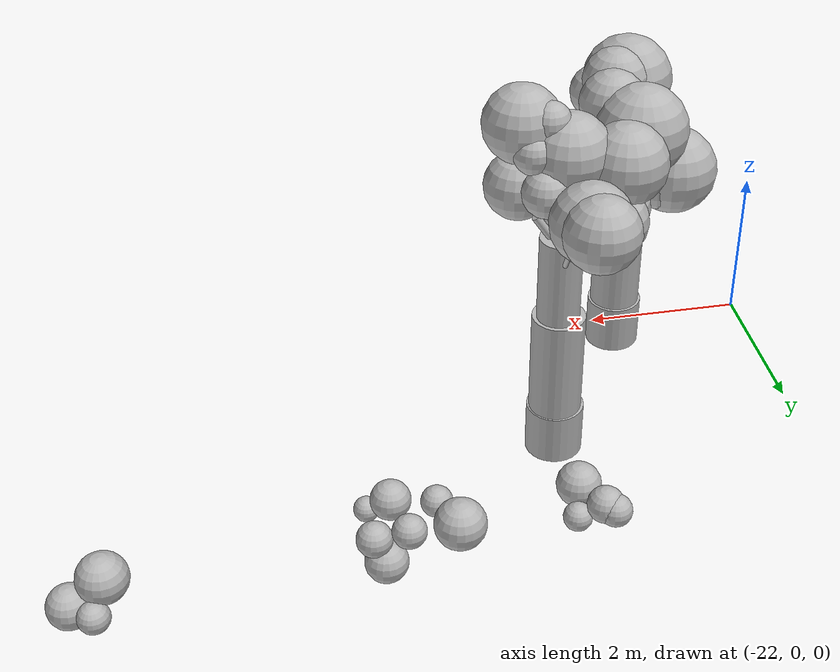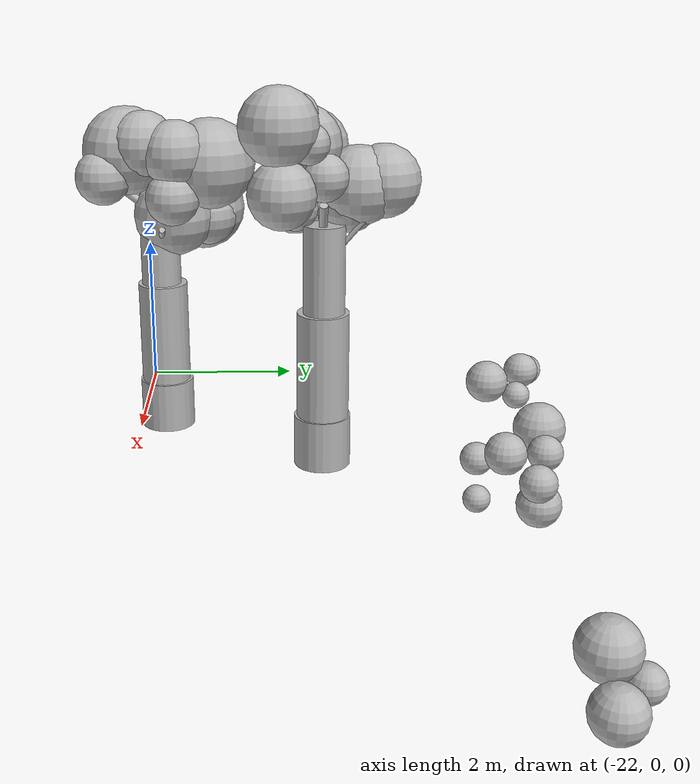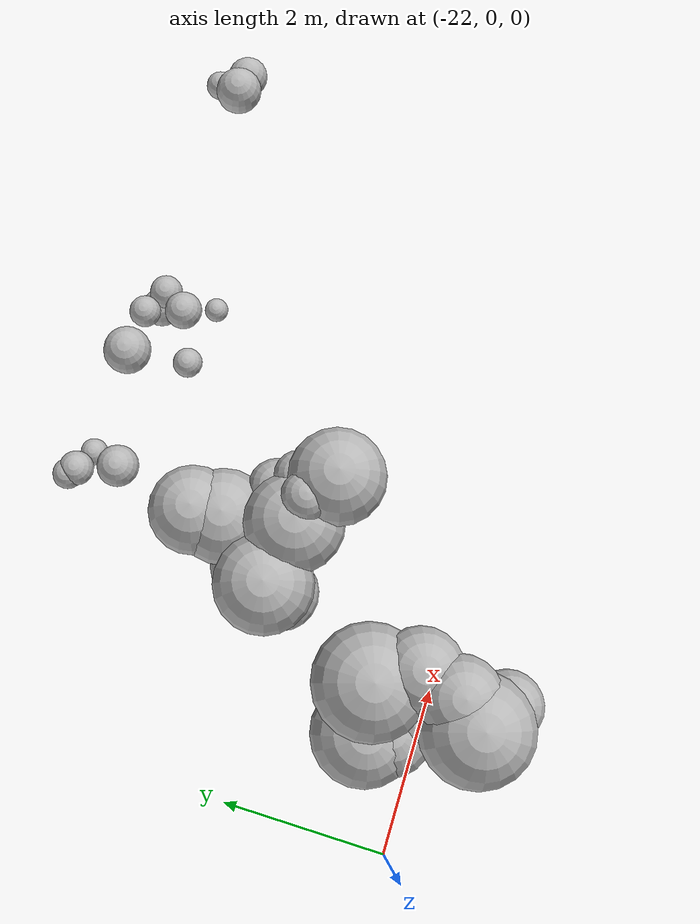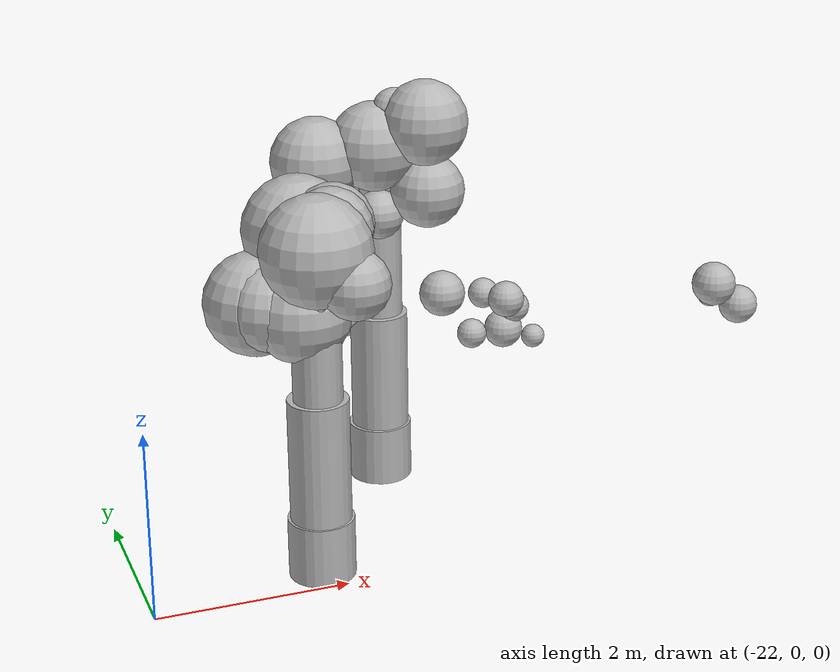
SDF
<sdf version="1.6">
 <world name="default">
  <model name="bush_17">
   <static>true</static>
   <pose>-20.1695 0.3543 0 0 0 0</pose>
   <link name="trunk">
    <pose>0 0 1.5000 0 0 0</pose>
    <collision name="trunk_c">
     <geometry><cylinder><radius>0.3500</radius><length>3.0000</length></cylinder></geometry>
    </collision>
   </link>
   <link name="trunk_v0">
    <pose>-0.0001 -0.0010 0.3100 0 0 0</pose>
    <visual name="trunk_v0_v">
     <geometry><cylinder><radius>0.3448</radius><length>0.6448</length></cylinder></geometry>
     <material>
      <script>
       <uri>model://bushfire/materials/scripts</uri>
       <uri>model://bushfire/materials/textures</uri>
       <name>Bushfire/CharBark</name>
      </script>
     </material>
    </visual>
   </link>
   <link name="trunk_v1">
    <pose>-0.0004 -0.0075 1.2700 0 0 0</pose>
    <visual name="trunk_v1_v">
     <geometry><cylinder><radius>0.3150</radius><length>1.3520</length></cylinder></geometry>
     <material>
      <script>
       <uri>model://bushfire/materials/scripts</uri>
       <uri>model://bushfire/materials/textures</uri>
       <name>Bushfire/BarkStringy</name>
      </script>
     </material>
    </visual>
   </link>
   <link name="trunk_v2">
    <pose>-0.0010 -0.0190 2.4600 0 0 0</pose>
    <visual name="trunk_v2_v">
     <geometry><cylinder><radius>0.2520</radius><length>1.1232</length></cylinder></geometry>
     <material>
      <script>
       <uri>model://bushfire/materials/scripts</uri>
       <uri>model://bushfire/materials/textures</uri>
       <name>Bushfire/BarkStringy</name>
      </script>
     </material>
    </visual>
   </link>
   <link name="branch0">
    <pose>0.2424 0.0303 2.5854 0 0.9604 0.1242</pose>
    <visual name="branch0_v">
     <geometry><cylinder><radius>0.0386</radius><length>0.5962</length></cylinder></geometry>
     <material>
      <script>
       <uri>model://bushfire/materials/scripts</uri>
       <uri>model://bushfire/materials/textures</uri>
       <name>Bushfire/BarkStringy</name>
      </script>
     </material>
    </visual>
   </link>
   <link name="branch1">
    <pose>-0.1376 0.1942 2.6648 0 0.9600 2.1872</pose>
    <visual name="branch1_v">
     <geometry><cylinder><radius>0.0537</radius><length>0.5810</length></cylinder></geometry>
     <material>
      <script>
       <uri>model://bushfire/materials/scripts</uri>
       <uri>model://bushfire/materials/textures</uri>
       <name>Bushfire/BarkStringy</name>
      </script>
     </material>
    </visual>
   </link>
   <link name="branch2">
    <pose>-0.0178 -0.2398 2.9943 0 0.9199 4.6383</pose>
    <visual name="branch2_v">
     <geometry><cylinder><radius>0.0520</radius><length>0.6046</length></cylinder></geometry>
     <material>
      <script>
       <uri>model://bushfire/materials/scripts</uri>
       <uri>model://bushfire/materials/textures</uri>
       <name>Bushfire/BarkStringy</name>
      </script>
     </material>
    </visual>
   </link>
   <link name="foliage0">
    <pose>0.2763 0.2343 3.6660 0 0 0</pose>
    <visual name="foliage0_v">
     <geometry><sphere><radius>0.4145</radius></sphere></geometry>
     <material>
      <script>
       <uri>model://bushfire/materials/scripts</uri>
       <uri>model://bushfire/materials/textures</uri>
       <name>Bushfire/Foliage0</name>
      </script>
     </material>
    </visual>
   </link>
   <link name="foliage1">
    <pose>0.0329 0.6445 3.4993 0 0 0</pose>
    <visual name="foliage1_v">
     <geometry><sphere><radius>0.5694</radius></sphere></geometry>
     <material>
      <script>
       <uri>model://bushfire/materials/scripts</uri>
       <uri>model://bushfire/materials/textures</uri>
       <name>Bushfire/Foliage2</name>
      </script>
     </material>
    </visual>
   </link>
   <link name="foliage2">
    <pose>-0.0856 -0.3977 3.6436 0 0 0</pose>
    <visual name="foliage2_v">
     <geometry><sphere><radius>0.5553</radius></sphere></geometry>
     <material>
      <script>
       <uri>model://bushfire/materials/scripts</uri>
       <uri>model://bushfire/materials/textures</uri>
       <name>Bushfire/Foliage0</name>
      </script>
     </material>
    </visual>
   </link>
   <link name="foliage3">
    <pose>0.3570 0.1918 3.1210 0 0 0</pose>
    <visual name="foliage3_v">
     <geometry><sphere><radius>0.3371</radius></sphere></geometry>
     <material>
      <script>
       <uri>model://bushfire/materials/scripts</uri>
       <uri>model://bushfire/materials/textures</uri>
       <name>Bushfire/Foliage1</name>
      </script>
     </material>
    </visual>
   </link>
   <link name="foliage4">
    <pose>-0.4569 0.5172 2.8348 0 0 0</pose>
    <visual name="foliage4_v">
     <geometry><sphere><radius>0.5348</radius></sphere></geometry>
     <material>
      <script>
       <uri>model://bushfire/materials/scripts</uri>
       <uri>model://bushfire/materials/textures</uri>
       <name>Bushfire/Foliage0</name>
      </script>
     </material>
    </visual>
   </link>
   <link name="foliage5">
    <pose>0.2117 -0.6682 3.3595 0 0 0</pose>
    <visual name="foliage5_v">
     <geometry><sphere><radius>0.3459</radius></sphere></geometry>
     <material>
      <script>
       <uri>model://bushfire/materials/scripts</uri>
       <uri>model://bushfire/materials/textures</uri>
       <name>Bushfire/Foliage0</name>
      </script>
     </material>
    </visual>
   </link>
   <link name="foliage6">
    <pose>0.1673 0.2972 3.3472 0 0 0</pose>
    <visual name="foliage6_v">
     <geometry><sphere><radius>0.2506</radius></sphere></geometry>
     <material>
      <script>
       <uri>model://bushfire/materials/scripts</uri>
       <uri>model://bushfire/materials/textures</uri>
       <name>Bushfire/Foliage1</name>
      </script>
     </material>
    </visual>
   </link>
   <link name="foliage7">
    <pose>-0.2602 0.5852 2.7724 0 0 0</pose>
    <visual name="foliage7_v">
     <geometry><sphere><radius>0.3803</radius></sphere></geometry>
     <material>
      <script>
       <uri>model://bushfire/materials/scripts</uri>
       <uri>model://bushfire/materials/textures</uri>
       <name>Bushfire/Foliage2</name>
      </script>
     </material>
    </visual>
   </link>
   <link name="foliage8">
    <pose>0.1349 -0.1606 3.7575 0 0 0</pose>
    <visual name="foliage8_v">
     <geometry><sphere><radius>0.4147</radius></sphere></geometry>
     <material>
      <script>
       <uri>model://bushfire/materials/scripts</uri>
       <uri>model://bushfire/materials/textures</uri>
       <name>Bushfire/Foliage1</name>
      </script>
     </material>
    </visual>
   </link>
   <link name="foliage9">
    <pose>-0.0933 0.1690 2.8172 0 0 0</pose>
    <visual name="foliage9_v">
     <geometry><sphere><radius>0.5162</radius></sphere></geometry>
     <material>
      <script>
       <uri>model://bushfire/materials/scripts</uri>
       <uri>model://bushfire/materials/textures</uri>
       <name>Bushfire/Foliage1</name>
      </script>
     </material>
    </visual>
   </link>
   <link name="foliage10">
    <pose>-0.3648 0.2910 2.8609 0 0 0</pose>
    <visual name="foliage10_v">
     <geometry><sphere><radius>0.4500</radius></sphere></geometry>
     <material>
      <script>
       <uri>model://bushfire/materials/scripts</uri>
       <uri>model://bushfire/materials/textures</uri>
       <name>Bushfire/Foliage0</name>
      </script>
     </material>
    </visual>
   </link>
  </model>
  <model name="bush_22">
   <static>true</static>
   <pose>-18.8647 2.3690 0 0 0 0</pose>
   <link name="trunk">
    <pose>0 0 1.5000 0 0 0</pose>
    <collision name="trunk_c">
     <geometry><cylinder><radius>0.3500</radius><length>3.0000</length></cylinder></geometry>
    </collision>
   </link>
   <link name="trunk_v0">
    <pose>0.0012 0.0009 0.3100 0 0 0</pose>
    <visual name="trunk_v0_v">
     <geometry><cylinder><radius>0.3448</radius><length>0.6448</length></cylinder></geometry>
     <material>
      <script>
       <uri>model://bushfire/materials/scripts</uri>
       <uri>model://bushfire/materials/textures</uri>
       <name>Bushfire/CharBark</name>
      </script>
     </material>
    </visual>
   </link>
   <link name="trunk_v1">
    <pose>0.0089 0.0063 1.2700 0 0 0</pose>
    <visual name="trunk_v1_v">
     <geometry><cylinder><radius>0.3150</radius><length>1.3520</length></cylinder></geometry>
     <material>
      <script>
       <uri>model://bushfire/materials/scripts</uri>
       <uri>model://bushfire/materials/textures</uri>
       <name>Bushfire/BarkSmooth</name>
      </script>
     </material>
    </visual>
   </link>
   <link name="trunk_v2">
    <pose>0.0223 0.0159 2.4600 0 0 0</pose>
    <visual name="trunk_v2_v">
     <geometry><cylinder><radius>0.2520</radius><length>1.1232</length></cylinder></geometry>
     <material>
      <script>
       <uri>model://bushfire/materials/scripts</uri>
       <uri>model://bushfire/materials/textures</uri>
       <name>Bushfire/BarkSmooth</name>
      </script>
     </material>
    </visual>
   </link>
   <link name="branch0">
    <pose>-0.2905 -0.0666 2.7023 0 1.0165 3.3669</pose>
    <visual name="branch0_v">
     <geometry><cylinder><radius>0.0480</radius><length>0.7012</length></cylinder></geometry>
     <material>
      <script>
       <uri>model://bushfire/materials/scripts</uri>
       <uri>model://bushfire/materials/textures</uri>
       <name>Bushfire/BarkSmooth</name>
      </script>
     </material>
    </visual>
   </link>
   <link name="branch1">
    <pose>0.0942 -0.2652 3.1068 0 0.6430 5.0538</pose>
    <visual name="branch1_v">
     <geometry><cylinder><radius>0.0327</radius><length>0.9386</length></cylinder></geometry>
     <material>
      <script>
       <uri>model://bushfire/materials/scripts</uri>
       <uri>model://bushfire/materials/textures</uri>
       <name>Bushfire/BarkSmooth</name>
      </script>
     </material>
    </visual>
   </link>
   <link name="branch2">
    <pose>0.1629 -0.0017 3.0626 0 0.5818 6.2729</pose>
    <visual name="branch2_v">
     <geometry><cylinder><radius>0.0499</radius><length>0.5930</length></cylinder></geometry>
     <material>
      <script>
       <uri>model://bushfire/materials/scripts</uri>
       <uri>model://bushfire/materials/textures</uri>
       <name>Bushfire/BarkSmooth</name>
      </script>
     </material>
    </visual>
   </link>
   <link name="branch3">
    <pose>0.0355 0.2672 2.8181 0 0.6943 7.7219</pose>
    <visual name="branch3_v">
     <geometry><cylinder><radius>0.0307</radius><length>0.8427</length></cylinder></geometry>
     <material>
      <script>
       <uri>model://bushfire/materials/scripts</uri>
       <uri>model://bushfire/materials/textures</uri>
       <name>Bushfire/BarkSmooth</name>
      </script>
     </material>
    </visual>
   </link>
   <link name="foliage0">
    <pose>-0.7127 -0.1455 3.7929 0 0 0</pose>
    <visual name="foliage0_v">
     <geometry><sphere><radius>0.4801</radius></sphere></geometry>
     <material>
      <script>
       <uri>model://bushfire/materials/scripts</uri>
       <uri>model://bushfire/materials/textures</uri>
       <name>Bushfire/Foliage2</name>
      </script>
     </material>
    </visual>
   </link>
   <link name="foliage1">
    <pose>0.4720 -0.4388 4.3367 0 0 0</pose>
    <visual name="foliage1_v">
     <geometry><sphere><radius>0.2018</radius></sphere></geometry>
     <material>
      <script>
       <uri>model://bushfire/materials/scripts</uri>
       <uri>model://bushfire/materials/textures</uri>
       <name>Bushfire/Foliage1</name>
      </script>
     </material>
    </visual>
   </link>
   <link name="foliage2">
    <pose>-0.0967 -0.2522 3.9294 0 0 0</pose>
    <visual name="foliage2_v">
     <geometry><sphere><radius>0.4785</radius></sphere></geometry>
     <material>
      <script>
       <uri>model://bushfire/materials/scripts</uri>
       <uri>model://bushfire/materials/textures</uri>
       <name>Bushfire/Foliage2</name>
      </script>
     </material>
    </visual>
   </link>
   <link name="foliage3">
    <pose>-0.1879 0.4276 3.4354 0 0 0</pose>
    <visual name="foliage3_v">
     <geometry><sphere><radius>0.4739</radius></sphere></geometry>
     <material>
      <script>
       <uri>model://bushfire/materials/scripts</uri>
       <uri>model://bushfire/materials/textures</uri>
       <name>Bushfire/Foliage0</name>
      </script>
     </material>
    </visual>
   </link>
   <link name="foliage4">
    <pose>-0.4003 -0.1076 3.0827 0 0 0</pose>
    <visual name="foliage4_v">
     <geometry><sphere><radius>0.2587</radius></sphere></geometry>
     <material>
      <script>
       <uri>model://bushfire/materials/scripts</uri>
       <uri>model://bushfire/materials/textures</uri>
       <name>Bushfire/Foliage1</name>
      </script>
     </material>
    </visual>
   </link>
   <link name="foliage5">
    <pose>0.1232 -0.2941 4.3098 0 0 0</pose>
    <visual name="foliage5_v">
     <geometry><sphere><radius>0.2371</radius></sphere></geometry>
     <material>
      <script>
       <uri>model://bushfire/materials/scripts</uri>
       <uri>model://bushfire/materials/textures</uri>
       <name>Bushfire/Foliage1</name>
      </script>
     </material>
    </visual>
   </link>
   <link name="foliage6">
    <pose>0.3261 -0.1711 4.0072 0 0 0</pose>
    <visual name="foliage6_v">
     <geometry><sphere><radius>0.2401</radius></sphere></geometry>
     <material>
      <script>
       <uri>model://bushfire/materials/scripts</uri>
       <uri>model://bushfire/materials/textures</uri>
       <name>Bushfire/Foliage0</name>
      </script>
     </material>
    </visual>
   </link>
   <link name="foliage7">
    <pose>-0.1833 0.3259 3.2160 0 0 0</pose>
    <visual name="foliage7_v">
     <geometry><sphere><radius>0.3364</radius></sphere></geometry>
     <material>
      <script>
       <uri>model://bushfire/materials/scripts</uri>
       <uri>model://bushfire/materials/textures</uri>
       <name>Bushfire/Foliage0</name>
      </script>
     </material>
    </visual>
   </link>
   <link name="foliage8">
    <pose>-0.5422 0.0273 3.1723 0 0 0</pose>
    <visual name="foliage8_v">
     <geometry><sphere><radius>0.4174</radius></sphere></geometry>
     <material>
      <script>
       <uri>model://bushfire/materials/scripts</uri>
       <uri>model://bushfire/materials/textures</uri>
       <name>Bushfire/Foliage2</name>
      </script>
     </material>
    </visual>
   </link>
   <link name="foliage9">
    <pose>0.3872 -0.5085 4.2065 0 0 0</pose>
    <visual name="foliage9_v">
     <geometry><sphere><radius>0.4566</radius></sphere></geometry>
     <material>
      <script>
       <uri>model://bushfire/materials/scripts</uri>
       <uri>model://bushfire/materials/textures</uri>
       <name>Bushfire/Foliage1</name>
      </script>
     </material>
    </visual>
   </link>
   <link name="foliage10">
    <pose>-0.0696 -0.3157 3.1881 0 0 0</pose>
    <visual name="foliage10_v">
     <geometry><sphere><radius>0.2639</radius></sphere></geometry>
     <material>
      <script>
       <uri>model://bushfire/materials/scripts</uri>
       <uri>model://bushfire/materials/textures</uri>
       <name>Bushfire/Foliage1</name>
      </script>
     </material>
    </visual>
   </link>
   <link name="foliage11">
    <pose>-0.2190 0.7242 3.4815 0 0 0</pose>
    <visual name="foliage11_v">
     <geometry><sphere><radius>0.4384</radius></sphere></geometry>
     <material>
      <script>
       <uri>model://bushfire/materials/scripts</uri>
       <uri>model://bushfire/materials/textures</uri>
       <name>Bushfire/Foliage2</name>
      </script>
     </material>
    </visual>
   </link>
   <link name="foliage12">
    <pose>-0.7022 -0.3118 3.1241 0 0 0</pose>
    <visual name="foliage12_v">
     <geometry><sphere><radius>0.3798</radius></sphere></geometry>
     <material>
      <script>
       <uri>model://bushfire/materials/scripts</uri>
       <uri>model://bushfire/materials/textures</uri>
       <name>Bushfire/Foliage0</name>
      </script>
     </material>
    </visual>
   </link>
   <link name="foliage13">
    <pose>0.4220 -0.4761 3.4489 0 0 0</pose>
    <visual name="foliage13_v">
     <geometry><sphere><radius>0.3978</radius></sphere></geometry>
     <material>
      <script>
       <uri>model://bushfire/materials/scripts</uri>
       <uri>model://bushfire/materials/textures</uri>
       <name>Bushfire/Foliage1</name>
      </script>
     </material>
    </visual>
   </link>
   <link name="foliage14">
    <pose>0.2157 0.0074 3.6067 0 0 0</pose>
    <visual name="foliage14_v">
     <geometry><sphere><radius>0.2826</radius></sphere></geometry>
     <material>
      <script>
       <uri>model://bushfire/materials/scripts</uri>
       <uri>model://bushfire/materials/textures</uri>
       <name>Bushfire/Foliage1</name>
      </script>
     </material>
    </visual>
   </link>
  </model>
  <model name="scrub">
   <static>true</static>
   <link name="scrub55_0">
    <pose>-18.7991 4.7740 1.2061 0 0 0</pose>
    <visual name="scrub55_0_v">
     <geometry><sphere><radius>0.2029</radius></sphere></geometry>
     <material>
      <script>
       <uri>model://bushfire/materials/scripts</uri>
       <uri>model://bushfire/materials/textures</uri>
       <name>Bushfire/Foliage2</name>
      </script>
     </material>
    </visual>
   </link>
   <link name="scrub55_2">
    <pose>-18.6230 4.3354 1.1313 0 0 0</pose>
    <visual name="scrub55_2_v">
     <geometry><sphere><radius>0.2482</radius></sphere></geometry>
     <material>
      <script>
       <uri>model://bushfire/materials/scripts</uri>
       <uri>model://bushfire/materials/textures</uri>
       <name>Bushfire/Foliage2</name>
      </script>
     </material>
    </visual>
   </link>
   <link name="scrub55_3">
    <pose>-18.5323 4.6786 0.9896 0 0 0</pose>
    <visual name="scrub55_3_v">
     <geometry><sphere><radius>0.1609</radius></sphere></geometry>
     <material>
      <script>
       <uri>model://bushfire/materials/scripts</uri>
       <uri>model://bushfire/materials/textures</uri>
       <name>Bushfire/Foliage0</name>
      </script>
     </material>
    </visual>
   </link>
   <link name="scrub55_5">
    <pose>-18.8875 4.8509 1.1784 0 0 0</pose>
    <visual name="scrub55_5_v">
     <geometry><sphere><radius>0.1799</radius></sphere></geometry>
     <material>
      <script>
       <uri>model://bushfire/materials/scripts</uri>
       <uri>model://bushfire/materials/textures</uri>
       <name>Bushfire/Foliage0</name>
      </script>
     </material>
    </visual>
   </link>
   <link name="scrub56_3">
    <pose>-13.5498 4.4735 0.8114 0 0 0</pose>
    <visual name="scrub56_3_v">
     <geometry><sphere><radius>0.2853</radius></sphere></geometry>
     <material>
      <script>
       <uri>model://bushfire/materials/scripts</uri>
       <uri>model://bushfire/materials/textures</uri>
       <name>Bushfire/Foliage1</name>
      </script>
     </material>
    </visual>
   </link>
   <link name="scrub56_5">
    <pose>-13.1737 4.4799 0.4718 0 0 0</pose>
    <visual name="scrub56_5_v">
     <geometry><sphere><radius>0.2526</radius></sphere></geometry>
     <material>
      <script>
       <uri>model://bushfire/materials/scripts</uri>
       <uri>model://bushfire/materials/textures</uri>
       <name>Bushfire/Foliage2</name>
      </script>
     </material>
    </visual>
   </link>
   <link name="scrub56_6">
    <pose>-13.4345 4.7668 0.5591 0 0 0</pose>
    <visual name="scrub56_6_v">
     <geometry><sphere><radius>0.1774</radius></sphere></geometry>
     <material>
      <script>
       <uri>model://bushfire/materials/scripts</uri>
       <uri>model://bushfire/materials/textures</uri>
       <name>Bushfire/Foliage0</name>
      </script>
     </material>
    </visual>
   </link>
   <link name="scrub61_0">
    <pose>-16.3727 4.5052 0.8766 0 0 0</pose>
    <visual name="scrub61_0_v">
     <geometry><sphere><radius>0.1997</radius></sphere></geometry>
     <material>
      <script>
       <uri>model://bushfire/materials/scripts</uri>
       <uri>model://bushfire/materials/textures</uri>
       <name>Bushfire/Foliage0</name>
      </script>
     </material>
    </visual>
   </link>
   <link name="scrub61_1">
    <pose>-16.5966 4.1927 1.1181 0 0 0</pose>
    <visual name="scrub61_1_v">
     <geometry><sphere><radius>0.2230</radius></sphere></geometry>
     <material>
      <script>
       <uri>model://bushfire/materials/scripts</uri>
       <uri>model://bushfire/materials/textures</uri>
       <name>Bushfire/Foliage1</name>
      </script>
     </material>
    </visual>
   </link>
   <link name="scrub61_2">
    <pose>-16.3685 3.8689 0.7198 0 0 0</pose>
    <visual name="scrub61_2_v">
     <geometry><sphere><radius>0.1434</radius></sphere></geometry>
     <material>
      <script>
       <uri>model://bushfire/materials/scripts</uri>
       <uri>model://bushfire/materials/textures</uri>
       <name>Bushfire/Foliage1</name>
      </script>
     </material>
    </visual>
   </link>
   <link name="scrub61_3">
    <pose>-17.1308 3.9878 0.8151 0 0 0</pose>
    <visual name="scrub61_3_v">
     <geometry><sphere><radius>0.1800</radius></sphere></geometry>
     <material>
      <script>
       <uri>model://bushfire/materials/scripts</uri>
       <uri>model://bushfire/materials/textures</uri>
       <name>Bushfire/Foliage1</name>
      </script>
     </material>
    </visual>
   </link>
   <link name="scrub61_4">
    <pose>-16.4899 4.5499 0.5776 0 0 0</pose>
    <visual name="scrub61_4_v">
     <geometry><sphere><radius>0.2405</radius></sphere></geometry>
     <material>
      <script>
       <uri>model://bushfire/materials/scripts</uri>
       <uri>model://bushfire/materials/textures</uri>
       <name>Bushfire/Foliage1</name>
      </script>
     </material>
    </visual>
   </link>
   <link name="scrub61_5">
    <pose>-17.2616 4.6807 1.1099 0 0 0</pose>
    <visual name="scrub61_5_v">
     <geometry><sphere><radius>0.2853</radius></sphere></geometry>
     <material>
      <script>
       <uri>model://bushfire/materials/scripts</uri>
       <uri>model://bushfire/materials/textures</uri>
       <name>Bushfire/Foliage1</name>
      </script>
     </material>
    </visual>
   </link>
   <link name="scrub61_6">
    <pose>-16.7294 4.6392 1.0579 0 0 0</pose>
    <visual name="scrub61_6_v">
     <geometry><sphere><radius>0.1891</radius></sphere></geometry>
     <material>
      <script>
       <uri>model://bushfire/materials/scripts</uri>
       <uri>model://bushfire/materials/textures</uri>
       <name>Bushfire/Foliage2</name>
      </script>
     </material>
    </visual>
   </link>
  </model>
 </world>
</sdf>
